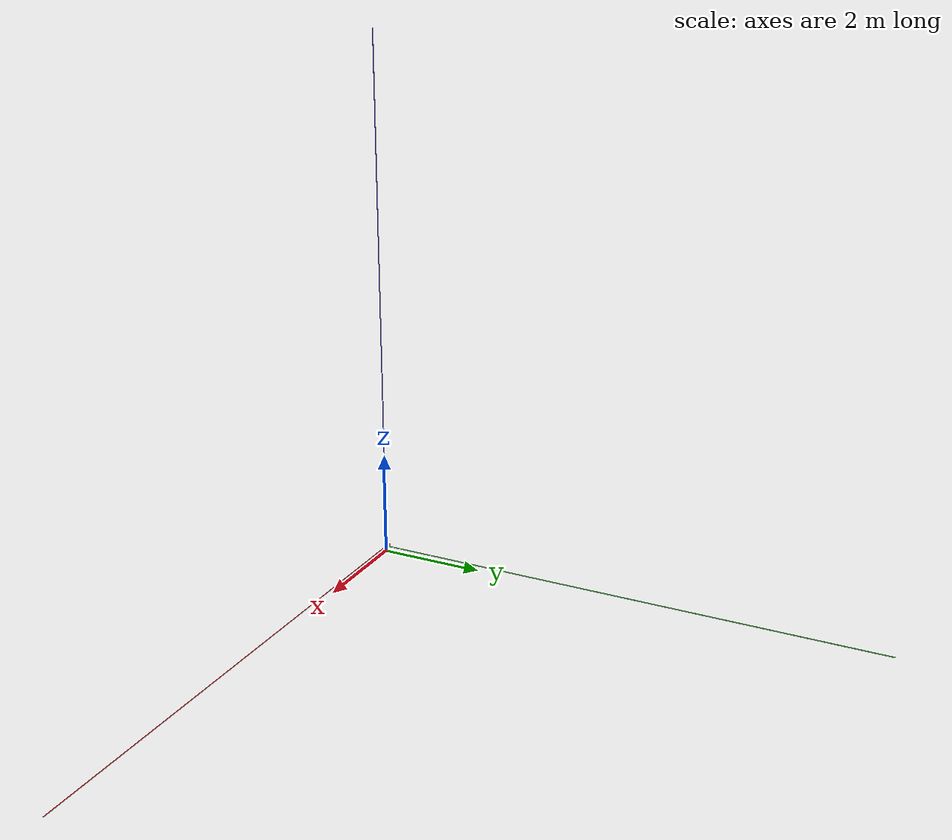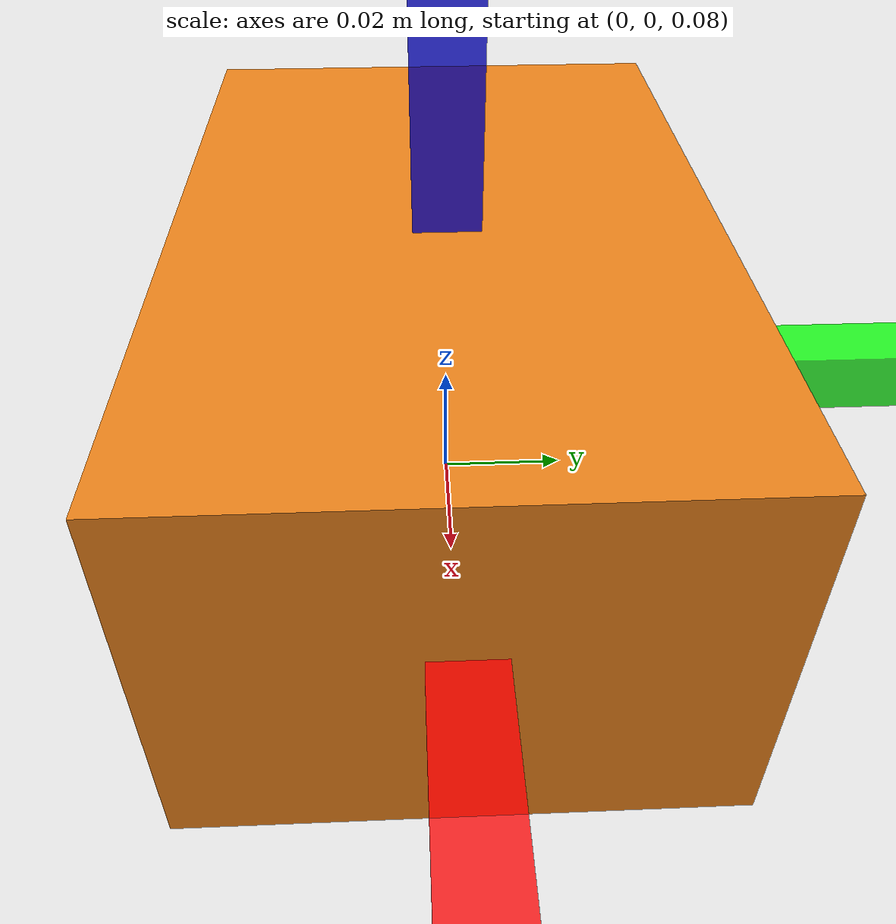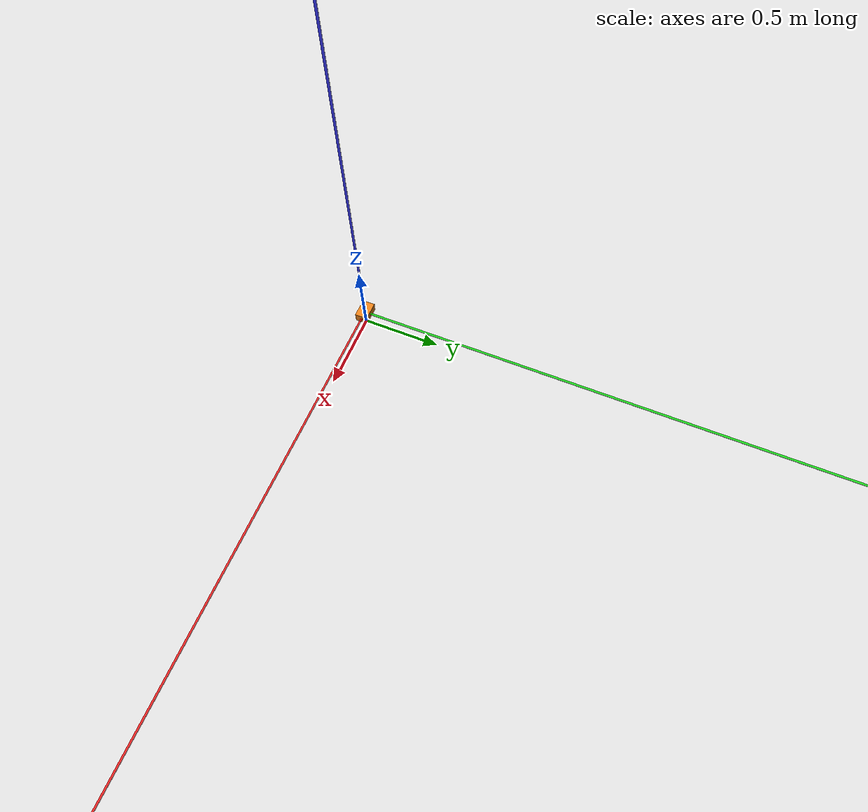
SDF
<sdf version="1.9">
 <world name="iris_runway">
  <physics name="1ms" type="ignore">
   <max_step_size>0.001</max_step_size>
   <real_time_factor>1.0</real_time_factor>
  </physics>
  <plugin filename="gz-sim-physics-system" name="gz::sim::systems::Physics"/>
  <plugin filename="gz-sim-sensors-system" name="gz::sim::systems::Sensors">
   <render_engine>ogre2</render_engine>
  </plugin>
  <plugin filename="gz-sim-user-commands-system" name="gz::sim::systems::UserCommands"/>
  <plugin filename="gz-sim-scene-broadcaster-system" name="gz::sim::systems::SceneBroadcaster"/>
  <plugin filename="gz-sim-imu-system" name="gz::sim::systems::Imu"/>
  <plugin filename="gz-sim-navsat-system" name="gz::sim::systems::NavSat"/>
  <scene><ambient>1.0 1.0 1.0</ambient><background>0.8 0.8 0.8</background></scene>
  <spherical_coordinates>
   <latitude_deg>-35.363262</latitude_deg>
   <longitude_deg>149.165237</longitude_deg>
   <elevation>584</elevation>
   <heading_deg>0</heading_deg>
   <surface_model>EARTH_WGS84</surface_model>
  </spherical_coordinates>
  <light type="directional" name="sun">
   <pose>0 0 10 0 0 0</pose>
   <diffuse>0.8 0.8 0.8 1</diffuse>
   <specular>0.8 0.8 0.8 1</specular>
   <attenuation>
    <range>1000</range>
    <constant>0.9</constant>
    <linear>0.01</linear>
    <quadratic>0.001</quadratic>
   </attenuation>
   <direction>-0.5 0.1 -0.9</direction>
  </light>
  <model name="axes">
   <static>1</static>
   <link name="link">
    <visual name="r">
     <cast_shadows>0</cast_shadows>
     <pose>5 0 0.1 0 0 0</pose>
     <geometry><box><size>10 0.01 0.01</size></box></geometry>
     <material>
      <ambient>1 0 0 0.8</ambient>
      <diffuse>1 0 0 0.8</diffuse>
      <emissive>1 0 0 0.8</emissive>
      <specular>0.5 0.5 0.5 0.8</specular>
     </material>
    </visual>
    <visual name="g">
     <cast_shadows>0</cast_shadows>
     <pose>0 5 0.1 0 0 0</pose>
     <geometry><box><size>0.01 10 0.01</size></box></geometry>
     <material>
      <ambient>0 1 0 0.8</ambient>
      <diffuse>0 1 0 0.8</diffuse>
      <emissive>0 1 0 0.8</emissive>
      <specular>0.5 0.5 0.5 0.8</specular>
     </material>
    </visual>
    <visual name="b">
     <cast_shadows>0</cast_shadows>
     <pose>0 0 5.1 0 0 0</pose>
     <geometry><box><size>0.01 0.01 10</size></box></geometry>
     <material>
      <ambient>0 0 1 0.8</ambient>
      <diffuse>0 0 1 0.8</diffuse>
      <emissive>0 0 1 0.8</emissive>
      <specular>0.5 0.5 0.5 0.8</specular>
     </material>
    </visual>
    <sensor name="navsat_sensor" type="navsat"><always_on>1</always_on><update_rate>1</update_rate></sensor>
   </link>
  </model>
  <include><uri>payload_box</uri><pose>0 0 0.10 0 0 0</pose></include>
  <plugin filename="gz-sim-triggered-publisher-system" name="gz::sim::systems::TriggeredPublisher">
   <input type="gz.msgs.Double" topic="/gripper/cmd"><match field="data" tol="0.4">1.0</match></input>
   <output type="gz.msgs.Empty" topic="/gripper_detach"/>
  </plugin>
  <model name="camwide">
   <static>true</static>
   <pose>-11 0 4.5 0 0 0</pose>
   <link name="l">
    <sensor name="c" type="camera">
     <always_on>1</always_on>
     <update_rate>4</update_rate>
     <topic>camwide</topic>
     <camera>
      <horizontal_fov>1.65</horizontal_fov>
      <image><width>640</width><height>360</height></image>
      <clip><near>0.1</near><far>500</far></clip>
     </camera>
    </sensor>
   </link>
  </model>
  <model name="camtele">
   <static>true</static>
   <pose>-11 0 1.5 0 -0.50 0</pose>
   <link name="l">
    <sensor name="c" type="camera">
     <always_on>1</always_on>
     <update_rate>4</update_rate>
     <topic>camtele</topic>
     <camera>
      <horizontal_fov>0.55</horizontal_fov>
      <image><width>640</width><height>360</height></image>
      <clip><near>0.1</near><far>500</far></clip>
     </camera>
    </sensor>
   </link>
  </model>
  <model name="camlow">
   <static>true</static>
   <pose>-8 0 1.5 0 -0.06 0</pose>
   <link name="l">
    <sensor name="c" type="camera">
     <always_on>1</always_on>
     <update_rate>4</update_rate>
     <topic>camlow</topic>
     <camera>
      <horizontal_fov>0.8</horizontal_fov>
      <image><width>640</width><height>360</height></image>
      <clip><near>0.1</near><far>500</far></clip>
     </camera>
    </sensor>
   </link>
  </model>
 </world>
</sdf>

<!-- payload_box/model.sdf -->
<sdf version="1.9">
  <model name="payload_box">
    <link name="payload_link">
      <inertial>
        <mass>0.2</mass>
        <inertia>
          <ixx>3.3e-4</ixx><iyy>3.3e-4</iyy><izz>3.3e-4</izz>
          <ixy>0</ixy><ixz>0</ixz><iyz>0</iyz>
        </inertia>
      </inertial>
      <collision name="col">
        <geometry><box><size>0.12 0.08 0.06</size></box></geometry>
      </collision>
      <visual name="vis">
        <geometry><box><size>0.12 0.08 0.06</size></box></geometry>
        <material>
          <ambient>0.9 0.5 0.1 1</ambient>
          <diffuse>0.9 0.5 0.1 1</diffuse>
        </material>
      </visual>
    </link>
  </model>
</sdf>
